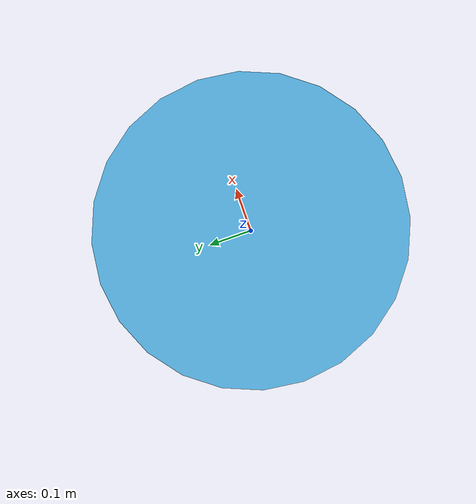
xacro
<?xml version="1.0"?>
<robot name="test_model">

  <!-- root link, on the ground just below the model origin -->
  <link name="base_footprint">
   <visual>
      <origin xyz="0 0 0" rpy="0 0 0" />
      <geometry>
        <box size="0.001 0.001 0.001" />
      </geometry>
    </visual>
  </link>

  <joint name="base_link_joint" type="fixed">
    <origin xyz="0.0 0 0.15" rpy="0 0 0" />
    <parent link="base_footprint"/>
    <child link="base_link" />
  </joint>

  <!-- the model -->
  <link name="base_link">
    <inertial>
      <mass value="10" />
      <inertia ixx="0.2134615385" ixy="0.0" ixz="0.0"
        iyy="0.2134615385" iyz="0.0"
        izz="0.3125" />
    </inertial>
    <visual>
      <geometry>
        <cylinder length="0.3" radius="0.25"/> <!-- does not need to match collision -->
        <origin xyz="0.0 0 0.35" rpy="0 0 0" />
      </geometry>
    </visual>
    <collision>
      <geometry>
        <cylinder length="0.3" radius="0.25"/>
      </geometry>
    </collision>
  </link>

  <gazebo>
    <plugin name="object_controller" filename="libgazebo_ros_planar_move.so">
      <commandTopic>cmd_vel</commandTopic>
      <odometryTopic>odom</odometryTopic>
      <odometryFrame>odom</odometryFrame>
      <odometryRate>20.0</odometryRate>
      <robotBaseFrame>base_footprint</robotBaseFrame>
    </plugin>
  </gazebo>

</robot>
